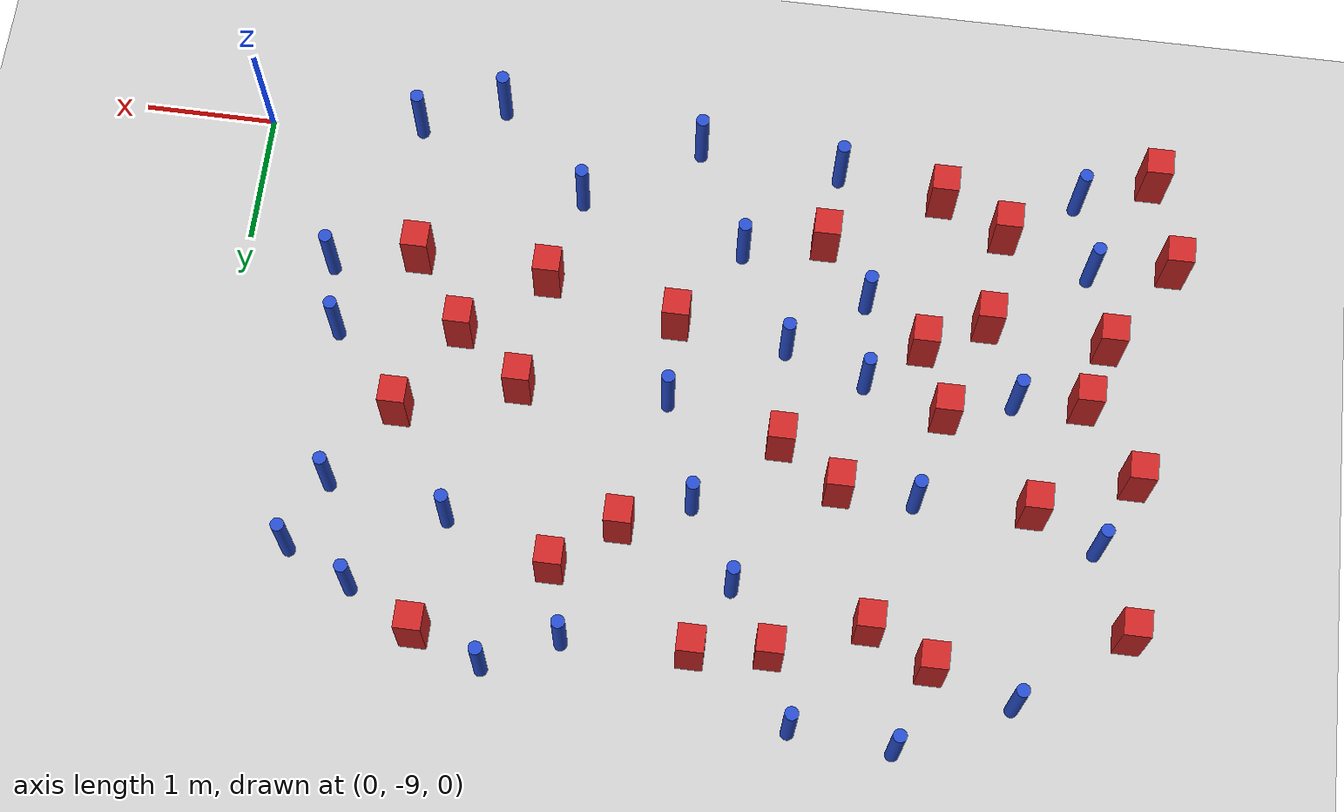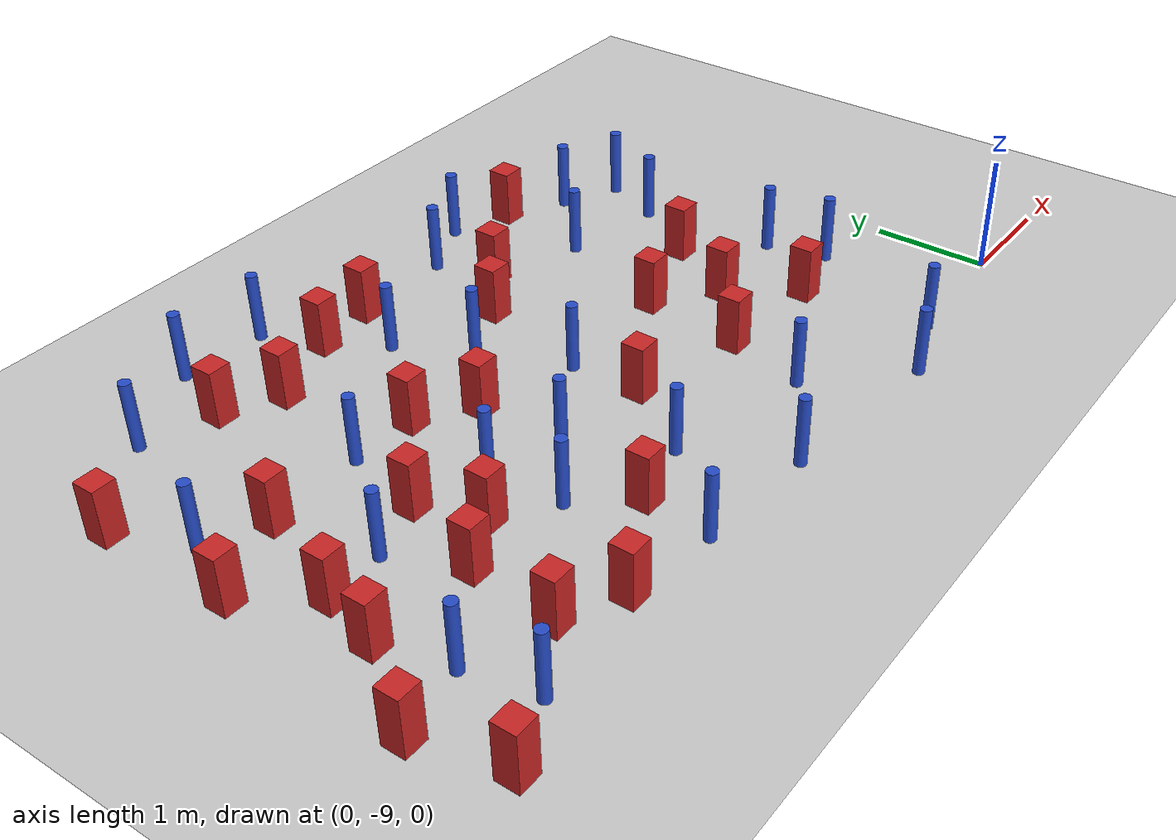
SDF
<sdf version="1.6">
 <world name="default">
  <model name="ground_plane">
   <static>1</static>
   <link name="link">
    <collision name="collision">
     <geometry><plane><normal>0 0 1</normal><size>100 100</size></plane></geometry>
     <surface><friction><ode><mu>100</mu><mu2>50</mu2></ode></friction></surface>
    </collision>
    <visual name="visual">
     <cast_shadows>0</cast_shadows>
     <geometry><plane><normal>0 0 1</normal><size>100 100</size></plane></geometry>
     <material>
      <ambient>1.0 1.0 1.0 1.0</ambient>
      <diffuse>0.8 0.8 0.8 1.0</diffuse>
      <specular>0.01 0.01 0.01 1.000000</specular>
     </material>
    </visual>
   </link>
  </model>
  <model name="pole_obstacle6">
   <static>true</static>
   <pose>-2.26504879221 -4.85748227697 7.38925637345e-09 -8.47170692798e-08 1.24976765033e-08 -1.74513093019e-07</pose>
   <link name="link">
    <pose>0 0 0.3 0 -0 0</pose>
    <inertial>
     <mass>1</mass>
     <inertia><ixx>0.145833</ixx><ixy>0</ixy><ixz>0</ixz><iyy>0.145833</iyy><iyz>0</iyz><izz>0.125</izz></inertia>
    </inertial>
    <collision name="collision">
     <geometry><cylinder><radius>0.05</radius><length>.6</length></cylinder></geometry>
    </collision>
    <visual name="visual">
     <geometry><cylinder><radius>0.05</radius><length>.6</length></cylinder></geometry>
     <material>
      <script><name>Gazebo/Blue</name><uri>file://media/materials/scripts/gazebo.material</uri></script>
     </material>
    </visual>
   </link>
  </model>
  <model name="square_post_obstacle4">
   <static>true</static>
   <pose>-4.2030178979 -6.79372922188 1.91545236811e-07 -7.35059704564e-06 1.12565212e-07 2.39332434364e-05</pose>
   <link name="link">
    <pose>0 0 0.25 0 -0 0</pose>
    <inertial>
     <mass>100</mass>
     <inertia>
      <ixx>0.166667</ixx>
      <ixy>0</ixy>
      <ixz>0</ixz>
      <iyy>0.166667</iyy>
      <iyz>0</iyz>
      <izz>0.166667</izz>
     </inertia>
    </inertial>
    <collision name="collision"><geometry><box><size>.2 .2 .5</size></box></geometry></collision>
    <visual name="visual">
     <geometry><box><size>.2 .2 .5</size></box></geometry>
     <material>
      <script><name>Gazebo/Red</name><uri>file://media/materials/scripts/gazebo.material</uri></script>
     </material>
    </visual>
   </link>
  </model>
  <model name="square_post_obstacle8">
   <static>true</static>
   <pose>-5.2184283776 -8.92105118813 1.91545236811e-07 -7.35059704564e-06 1.12565212e-07 2.39332434364e-05</pose>
   <link name="link">
    <pose>0 0 0.25 0 -0 0</pose>
    <inertial>
     <mass>100</mass>
     <inertia>
      <ixx>0.166667</ixx>
      <ixy>0</ixy>
      <ixz>0</ixz>
      <iyy>0.166667</iyy>
      <iyz>0</iyz>
      <izz>0.166667</izz>
     </inertia>
    </inertial>
    <collision name="collision"><geometry><box><size>.2 .2 .5</size></box></geometry></collision>
    <visual name="visual">
     <geometry><box><size>.2 .2 .5</size></box></geometry>
     <material>
      <script><name>Gazebo/Red</name><uri>file://media/materials/scripts/gazebo.material</uri></script>
     </material>
    </visual>
   </link>
  </model>
  <model name="pole_obstacle13">
   <static>true</static>
   <pose>-5.8833607309 -7.31371165673 7.38925637345e-09 -8.47170692796e-08 1.24976764786e-08 -1.74513093032e-07</pose>
   <link name="link">
    <pose>0 0 0.3 0 -0 0</pose>
    <inertial>
     <mass>1</mass>
     <inertia><ixx>0.145833</ixx><ixy>0</ixy><ixz>0</ixz><iyy>0.145833</iyy><iyz>0</iyz><izz>0.125</izz></inertia>
    </inertial>
    <collision name="collision">
     <geometry><cylinder><radius>0.05</radius><length>.6</length></cylinder></geometry>
    </collision>
    <visual name="visual">
     <geometry><cylinder><radius>0.05</radius><length>.6</length></cylinder></geometry>
     <material>
      <script><name>Gazebo/Blue</name><uri>file://media/materials/scripts/gazebo.material</uri></script>
     </material>
    </visual>
   </link>
  </model>
  <model name="square_post_obstacle12">
   <static>true</static>
   <pose>-5.38060062174 -7.15914760359 1.91545236811e-07 -7.35059704564e-06 1.12565212e-07 2.39332434364e-05</pose>
   <link name="link">
    <pose>0 0 0.25 0 -0 0</pose>
    <inertial>
     <mass>100</mass>
     <inertia>
      <ixx>0.166667</ixx>
      <ixy>0</ixy>
      <ixz>0</ixz>
      <iyy>0.166667</iyy>
      <iyz>0</iyz>
      <izz>0.166667</izz>
     </inertia>
    </inertial>
    <collision name="collision"><geometry><box><size>.2 .2 .5</size></box></geometry></collision>
    <visual name="visual">
     <geometry><box><size>.2 .2 .5</size></box></geometry>
     <material>
      <script><name>Gazebo/Red</name><uri>file://media/materials/scripts/gazebo.material</uri></script>
     </material>
    </visual>
   </link>
  </model>
  <model name="pole_obstacle27">
   <static>true</static>
   <pose>-2.80388599131 -5.11514710349 7.38925637345e-09 -8.47170692798e-08 1.24976765033e-08 -1.74513093019e-07</pose>
   <link name="link">
    <pose>0 0 0.3 0 -0 0</pose>
    <inertial>
     <mass>1</mass>
     <inertia><ixx>0.145833</ixx><ixy>0</ixy><ixz>0</ixz><iyy>0.145833</iyy><iyz>0</iyz><izz>0.125</izz></inertia>
    </inertial>
    <collision name="collision">
     <geometry><cylinder><radius>0.05</radius><length>.6</length></cylinder></geometry>
    </collision>
    <visual name="visual">
     <geometry><cylinder><radius>0.05</radius><length>.6</length></cylinder></geometry>
     <material>
      <script><name>Gazebo/Blue</name><uri>file://media/materials/scripts/gazebo.material</uri></script>
     </material>
    </visual>
   </link>
  </model>
  <model name="square_post_obstacle23">
   <static>true</static>
   <pose>-1.74018126087 -7.39712033459 1.91545236811e-07 -7.35059704564e-06 1.12565212e-07 2.39332434364e-05</pose>
   <link name="link">
    <pose>0 0 0.25 0 -0 0</pose>
    <inertial>
     <mass>100</mass>
     <inertia>
      <ixx>0.166667</ixx>
      <ixy>0</ixy>
      <ixz>0</ixz>
      <iyy>0.166667</iyy>
      <iyz>0</iyz>
      <izz>0.166667</izz>
     </inertia>
    </inertial>
    <collision name="collision"><geometry><box><size>.2 .2 .5</size></box></geometry></collision>
    <visual name="visual">
     <geometry><box><size>.2 .2 .5</size></box></geometry>
     <material>
      <script><name>Gazebo/Red</name><uri>file://media/materials/scripts/gazebo.material</uri></script>
     </material>
    </visual>
   </link>
  </model>
  <model name="pole_obstacle33">
   <static>true</static>
   <pose>-3.34837696422 -9.11828429959 7.38925637345e-09 -8.47170692793e-08 1.24976764408e-08 -1.74513093041e-07</pose>
   <link name="link">
    <pose>0 0 0.3 0 -0 0</pose>
    <inertial>
     <mass>1</mass>
     <inertia><ixx>0.145833</ixx><ixy>0</ixy><ixz>0</ixz><iyy>0.145833</iyy><iyz>0</iyz><izz>0.125</izz></inertia>
    </inertial>
    <collision name="collision">
     <geometry><cylinder><radius>0.05</radius><length>.6</length></cylinder></geometry>
    </collision>
    <visual name="visual">
     <geometry><cylinder><radius>0.05</radius><length>.6</length></cylinder></geometry>
     <material>
      <script><name>Gazebo/Blue</name><uri>file://media/materials/scripts/gazebo.material</uri></script>
     </material>
    </visual>
   </link>
  </model>
  <model name="square_post_obstacle30">
   <static>true</static>
   <pose>-1.36526067037 -6.71873833776 1.91545236811e-07 -7.35059704564e-06 1.12565212e-07 2.39332434364e-05</pose>
   <link name="link">
    <pose>0 0 0.25 0 -0 0</pose>
    <inertial>
     <mass>100</mass>
     <inertia>
      <ixx>0.166667</ixx>
      <ixy>0</ixy>
      <ixz>0</ixz>
      <iyy>0.166667</iyy>
      <iyz>0</iyz>
      <izz>0.166667</izz>
     </inertia>
    </inertial>
    <collision name="collision"><geometry><box><size>.2 .2 .5</size></box></geometry></collision>
    <visual name="visual">
     <geometry><box><size>.2 .2 .5</size></box></geometry>
     <material>
      <script><name>Gazebo/Red</name><uri>file://media/materials/scripts/gazebo.material</uri></script>
     </material>
    </visual>
   </link>
  </model>
  <model name="square_post_obstacle31">
   <static>true</static>
   <pose>-6.54015330846 -7.85762567127 1.91545236811e-07 -7.35059704564e-06 1.12565212e-07 2.39332434364e-05</pose>
   <link name="link">
    <pose>0 0 0.25 0 -0 0</pose>
    <inertial>
     <mass>100</mass>
     <inertia>
      <ixx>0.166667</ixx>
      <ixy>0</ixy>
      <ixz>0</ixz>
      <iyy>0.166667</iyy>
      <iyz>0</iyz>
      <izz>0.166667</izz>
     </inertia>
    </inertial>
    <collision name="collision"><geometry><box><size>.2 .2 .5</size></box></geometry></collision>
    <visual name="visual">
     <geometry><box><size>.2 .2 .5</size></box></geometry>
     <material>
      <script><name>Gazebo/Red</name><uri>file://media/materials/scripts/gazebo.material</uri></script>
     </material>
    </visual>
   </link>
  </model>
  <model name="pole_obstacle47">
   <static>true</static>
   <pose>-3.34162729168 -7.02548422057 7.38925637345e-09 -8.47170692794e-08 1.24976764468e-08 -1.7451309304e-07</pose>
   <link name="link">
    <pose>0 0 0.3 0 -0 0</pose>
    <inertial>
     <mass>1</mass>
     <inertia><ixx>0.145833</ixx><ixy>0</ixy><ixz>0</ixz><iyy>0.145833</iyy><iyz>0</iyz><izz>0.125</izz></inertia>
    </inertial>
    <collision name="collision">
     <geometry><cylinder><radius>0.05</radius><length>.6</length></cylinder></geometry>
    </collision>
    <visual name="visual">
     <geometry><cylinder><radius>0.05</radius><length>.6</length></cylinder></geometry>
     <material>
      <script><name>Gazebo/Blue</name><uri>file://media/materials/scripts/gazebo.material</uri></script>
     </material>
    </visual>
   </link>
  </model>
  <model name="pole_obstacle55">
   <static>true</static>
   <pose>-6.5473856778 -6.2532618082 7.38925637345e-09 -8.47170692796e-08 1.24976764786e-08 -1.74513093032e-07</pose>
   <link name="link">
    <pose>0 0 0.3 0 -0 0</pose>
    <inertial>
     <mass>1</mass>
     <inertia><ixx>0.145833</ixx><ixy>0</ixy><ixz>0</ixz><iyy>0.145833</iyy><iyz>0</iyz><izz>0.125</izz></inertia>
    </inertial>
    <collision name="collision">
     <geometry><cylinder><radius>0.05</radius><length>.6</length></cylinder></geometry>
    </collision>
    <visual name="visual">
     <geometry><cylinder><radius>0.05</radius><length>.6</length></cylinder></geometry>
     <material>
      <script><name>Gazebo/Blue</name><uri>file://media/materials/scripts/gazebo.material</uri></script>
     </material>
    </visual>
   </link>
  </model>
  <model name="square_post_obstacle45">
   <static>true</static>
   <pose>-5.63883489366 -7.92585253347 1.91545236811e-07 -7.35059704564e-06 1.12565212e-07 2.39332434364e-05</pose>
   <link name="link">
    <pose>0 0 0.25 0 -0 0</pose>
    <inertial>
     <mass>100</mass>
     <inertia>
      <ixx>0.166667</ixx>
      <ixy>0</ixy>
      <ixz>0</ixz>
      <iyy>0.166667</iyy>
      <iyz>0</iyz>
      <izz>0.166667</izz>
     </inertia>
    </inertial>
    <collision name="collision"><geometry><box><size>.2 .2 .5</size></box></geometry></collision>
    <visual name="visual">
     <geometry><box><size>.2 .2 .5</size></box></geometry>
     <material>
      <script><name>Gazebo/Red</name><uri>file://media/materials/scripts/gazebo.material</uri></script>
     </material>
    </visual>
   </link>
  </model>
  <model name="pole_obstacle65">
   <static>true</static>
   <pose>-1.85678102701 -5.92381229726 7.38925637345e-09 -8.47170692799e-08 1.24976765033e-08 -1.74513093018e-07</pose>
   <link name="link">
    <pose>0 0 0.3 0 -0 0</pose>
    <inertial>
     <mass>1</mass>
     <inertia><ixx>0.145833</ixx><ixy>0</ixy><ixz>0</ixz><iyy>0.145833</iyy><iyz>0</iyz><izz>0.125</izz></inertia>
    </inertial>
    <collision name="collision">
     <geometry><cylinder><radius>0.05</radius><length>.6</length></cylinder></geometry>
    </collision>
    <visual name="visual">
     <geometry><cylinder><radius>0.05</radius><length>.6</length></cylinder></geometry>
     <material>
      <script><name>Gazebo/Blue</name><uri>file://media/materials/scripts/gazebo.material</uri></script>
     </material>
    </visual>
   </link>
  </model>
  <model name="square_post_obstacle58">
   <static>true</static>
   <pose>-3.10819975925 -6.01784533342 1.91545236811e-07 -7.35059704564e-06 1.12565212e-07 2.39332434364e-05</pose>
   <link name="link">
    <pose>0 0 0.25 0 -0 0</pose>
    <inertial>
     <mass>100</mass>
     <inertia>
      <ixx>0.166667</ixx>
      <ixy>0</ixy>
      <ixz>0</ixz>
      <iyy>0.166667</iyy>
      <iyz>0</iyz>
      <izz>0.166667</izz>
     </inertia>
    </inertial>
    <collision name="collision"><geometry><box><size>.2 .2 .5</size></box></geometry></collision>
    <visual name="visual">
     <geometry><box><size>.2 .2 .5</size></box></geometry>
     <material>
      <script><name>Gazebo/Red</name><uri>file://media/materials/scripts/gazebo.material</uri></script>
     </material>
    </visual>
   </link>
  </model>
  <model name="square_post_obstacle59">
   <static>true</static>
   <pose>-4.65471401799 -6.48807343669 1.91545236811e-07 -7.35059704564e-06 1.12565212e-07 2.39332434364e-05</pose>
   <link name="link">
    <pose>0 0 0.25 0 -0 0</pose>
    <inertial>
     <mass>100</mass>
     <inertia>
      <ixx>0.166667</ixx>
      <ixy>0</ixy>
      <ixz>0</ixz>
      <iyy>0.166667</iyy>
      <iyz>0</iyz>
      <izz>0.166667</izz>
     </inertia>
    </inertial>
    <collision name="collision"><geometry><box><size>.2 .2 .5</size></box></geometry></collision>
    <visual name="visual">
     <geometry><box><size>.2 .2 .5</size></box></geometry>
     <material>
      <script><name>Gazebo/Red</name><uri>file://media/materials/scripts/gazebo.material</uri></script>
     </material>
    </visual>
   </link>
  </model>
  <model name="pole_obstacle76">
   <static>true</static>
   <pose>-4.7268592495 -7.99118646013 7.38925637345e-09 -8.47170692796e-08 1.24976764752e-08 -1.74513093035e-07</pose>
   <link name="link">
    <pose>0 0 0.3 0 -0 0</pose>
    <inertial>
     <mass>1</mass>
     <inertia><ixx>0.145833</ixx><ixy>0</ixy><ixz>0</ixz><iyy>0.145833</iyy><iyz>0</iyz><izz>0.125</izz></inertia>
    </inertial>
    <collision name="collision">
     <geometry><cylinder><radius>0.05</radius><length>.6</length></cylinder></geometry>
    </collision>
    <visual name="visual">
     <geometry><cylinder><radius>0.05</radius><length>.6</length></cylinder></geometry>
     <material>
      <script><name>Gazebo/Blue</name><uri>file://media/materials/scripts/gazebo.material</uri></script>
     </material>
    </visual>
   </link>
  </model>
  <model name="pole_obstacle77">
   <static>true</static>
   <pose>-3.76123538723 -8.29479877128 7.38925637345e-09 -8.47170692799e-08 1.24976765012e-08 -1.74513093021e-07</pose>
   <link name="link">
    <pose>0 0 0.3 0 -0 0</pose>
    <inertial>
     <mass>1</mass>
     <inertia><ixx>0.145833</ixx><ixy>0</ixy><ixz>0</ixz><iyy>0.145833</iyy><iyz>0</iyz><izz>0.125</izz></inertia>
    </inertial>
    <collision name="collision">
     <geometry><cylinder><radius>0.05</radius><length>.6</length></cylinder></geometry>
    </collision>
    <visual name="visual">
     <geometry><cylinder><radius>0.05</radius><length>.6</length></cylinder></geometry>
     <material>
      <script><name>Gazebo/Blue</name><uri>file://media/materials/scripts/gazebo.material</uri></script>
     </material>
    </visual>
   </link>
  </model>
  <model name="pole_obstacle78">
   <static>true</static>
   <pose>-3.61400960462 -6.24065457291 7.38925637345e-09 -8.47170692794e-08 1.24976764468e-08 -1.7451309304e-07</pose>
   <link name="link">
    <pose>0 0 0.3 0 -0 0</pose>
    <inertial>
     <mass>1</mass>
     <inertia><ixx>0.145833</ixx><ixy>0</ixy><ixz>0</ixz><iyy>0.145833</iyy><iyz>0</iyz><izz>0.125</izz></inertia>
    </inertial>
    <collision name="collision">
     <geometry><cylinder><radius>0.05</radius><length>.6</length></cylinder></geometry>
    </collision>
    <visual name="visual">
     <geometry><cylinder><radius>0.05</radius><length>.6</length></cylinder></geometry>
     <material>
      <script><name>Gazebo/Blue</name><uri>file://media/materials/scripts/gazebo.material</uri></script>
     </material>
    </visual>
   </link>
  </model>
  <model name="pole_obstacle83">
   <static>true</static>
   <pose>-4.42569632141 -9.03046354257 7.38925637345e-09 -8.471706928e-08 1.24976765081e-08 -1.74513093015e-07</pose>
   <link name="link">
    <pose>0 0 0.3 0 -0 0</pose>
    <inertial>
     <mass>1</mass>
     <inertia><ixx>0.145833</ixx><ixy>0</ixy><ixz>0</ixz><iyy>0.145833</iyy><iyz>0</iyz><izz>0.125</izz></inertia>
    </inertial>
    <collision name="collision">
     <geometry><cylinder><radius>0.05</radius><length>.6</length></cylinder></geometry>
    </collision>
    <visual name="visual">
     <geometry><cylinder><radius>0.05</radius><length>.6</length></cylinder></geometry>
     <material>
      <script><name>Gazebo/Blue</name><uri>file://media/materials/scripts/gazebo.material</uri></script>
     </material>
    </visual>
   </link>
  </model>
  <model name="square_post_obstacle76">
   <static>true</static>
   <pose>-2.23571767284 -7.00314785538 1.91545236811e-07 -7.35059704564e-06 1.12565212e-07 2.39332434364e-05</pose>
   <link name="link">
    <pose>0 0 0.25 0 -0 0</pose>
    <inertial>
     <mass>100</mass>
     <inertia>
      <ixx>0.166667</ixx>
      <ixy>0</ixy>
      <ixz>0</ixz>
      <iyy>0.166667</iyy>
      <iyz>0</iyz>
      <izz>0.166667</izz>
     </inertia>
    </inertial>
    <collision name="collision"><geometry><box><size>.2 .2 .5</size></box></geometry></collision>
    <visual name="visual">
     <geometry><box><size>.2 .2 .5</size></box></geometry>
     <material>
      <script><name>Gazebo/Red</name><uri>file://media/materials/scripts/gazebo.material</uri></script>
     </material>
    </visual>
   </link>
  </model>
  <model name="pole_obstacle90">
   <static>true</static>
   <pose>-0.749116647324 -5.56674345181 7.38925637345e-09 -8.471706928e-08 1.24976765086e-08 -1.74513093015e-07</pose>
   <link name="link">
    <pose>0 0 0.3 0 -0 0</pose>
    <inertial>
     <mass>1</mass>
     <inertia><ixx>0.145833</ixx><ixy>0</ixy><ixz>0</ixz><iyy>0.145833</iyy><iyz>0</iyz><izz>0.125</izz></inertia>
    </inertial>
    <collision name="collision">
     <geometry><cylinder><radius>0.05</radius><length>.6</length></cylinder></geometry>
    </collision>
    <visual name="visual">
     <geometry><cylinder><radius>0.05</radius><length>.6</length></cylinder></geometry>
     <material>
      <script><name>Gazebo/Blue</name><uri>file://media/materials/scripts/gazebo.material</uri></script>
     </material>
    </visual>
   </link>
  </model>
  <model name="square_post_obstacle91">
   <static>true</static>
   <pose>-4.96407467702 -5.47694185136 1.91545236811e-07 -7.35059704564e-06 1.12565212e-07 2.39332434364e-05</pose>
   <link name="link">
    <pose>0 0 0.25 0 -0 0</pose>
    <inertial>
     <mass>100</mass>
     <inertia>
      <ixx>0.166667</ixx>
      <ixy>0</ixy>
      <ixz>0</ixz>
      <iyy>0.166667</iyy>
      <iyz>0</iyz>
      <izz>0.166667</izz>
     </inertia>
    </inertial>
    <collision name="collision"><geometry><box><size>.2 .2 .5</size></box></geometry></collision>
    <visual name="visual">
     <geometry><box><size>.2 .2 .5</size></box></geometry>
     <material>
      <script><name>Gazebo/Red</name><uri>file://media/materials/scripts/gazebo.material</uri></script>
     </material>
    </visual>
   </link>
  </model>
  <model name="square_post_obstacle99">
   <static>true</static>
   <pose>-6.79808715885 -6.80720416497 1.91545236811e-07 -7.35059704564e-06 1.12565212e-07 2.39332434364e-05</pose>
   <link name="link">
    <pose>0 0 0.25 0 -0 0</pose>
    <inertial>
     <mass>100</mass>
     <inertia>
      <ixx>0.166667</ixx>
      <ixy>0</ixy>
      <ixz>0</ixz>
      <iyy>0.166667</iyy>
      <iyz>0</iyz>
      <izz>0.166667</izz>
     </inertia>
    </inertial>
    <collision name="collision"><geometry><box><size>.2 .2 .5</size></box></geometry></collision>
    <visual name="visual">
     <geometry><box><size>.2 .2 .5</size></box></geometry>
     <material>
      <script><name>Gazebo/Red</name><uri>file://media/materials/scripts/gazebo.material</uri></script>
     </material>
    </visual>
   </link>
  </model>
  <model name="pole_obstacle113">
   <static>true</static>
   <pose>-3.96846138044 -5.65490490385 7.38925637345e-09 -8.471706928e-08 1.24976765147e-08 -1.74513093014e-07</pose>
   <link name="link">
    <pose>0 0 0.3 0 -0 0</pose>
    <inertial>
     <mass>1</mass>
     <inertia><ixx>0.145833</ixx><ixy>0</ixy><ixz>0</ixz><iyy>0.145833</iyy><iyz>0</iyz><izz>0.125</izz></inertia>
    </inertial>
    <collision name="collision">
     <geometry><cylinder><radius>0.05</radius><length>.6</length></cylinder></geometry>
    </collision>
    <visual name="visual">
     <geometry><cylinder><radius>0.05</radius><length>.6</length></cylinder></geometry>
     <material>
      <script><name>Gazebo/Blue</name><uri>file://media/materials/scripts/gazebo.material</uri></script>
     </material>
    </visual>
   </link>
  </model>
  <model name="square_post_obstacle120">
   <static>true</static>
   <pose>-5.17726432455 -7.67786126438 1.91545236811e-07 -7.35059704564e-06 1.12565212e-07 2.39332434364e-05</pose>
   <link name="link">
    <pose>0 0 0.25 0 -0 0</pose>
    <inertial>
     <mass>100</mass>
     <inertia>
      <ixx>0.166667</ixx>
      <ixy>0</ixy>
      <ixz>0</ixz>
      <iyy>0.166667</iyy>
      <iyz>0</iyz>
      <izz>0.166667</izz>
     </inertia>
    </inertial>
    <collision name="collision"><geometry><box><size>.2 .2 .5</size></box></geometry></collision>
    <visual name="visual">
     <geometry><box><size>.2 .2 .5</size></box></geometry>
     <material>
      <script><name>Gazebo/Red</name><uri>file://media/materials/scripts/gazebo.material</uri></script>
     </material>
    </visual>
   </link>
  </model>
  <model name="pole_obstacle124">
   <static>true</static>
   <pose>-4.47588805026 -4.67273683618 7.38925637345e-09 -8.47170692796e-08 1.24976764786e-08 -1.74513093032e-07</pose>
   <link name="link">
    <pose>0 0 0.3 0 -0 0</pose>
    <inertial>
     <mass>1</mass>
     <inertia><ixx>0.145833</ixx><ixy>0</ixy><ixz>0</ixz><iyy>0.145833</iyy><iyz>0</iyz><izz>0.125</izz></inertia>
    </inertial>
    <collision name="collision">
     <geometry><cylinder><radius>0.05</radius><length>.6</length></cylinder></geometry>
    </collision>
    <visual name="visual">
     <geometry><cylinder><radius>0.05</radius><length>.6</length></cylinder></geometry>
     <material>
      <script><name>Gazebo/Blue</name><uri>file://media/materials/scripts/gazebo.material</uri></script>
     </material>
    </visual>
   </link>
  </model>
  <model name="square_post_obstacle125">
   <static>true</static>
   <pose>-6.0695849278 -6.49443843851 1.91545236811e-07 -7.35059704564e-06 1.12565212e-07 2.39332434364e-05</pose>
   <link name="link">
    <pose>0 0 0.25 0 -0 0</pose>
    <inertial>
     <mass>100</mass>
     <inertia>
      <ixx>0.166667</ixx>
      <ixy>0</ixy>
      <ixz>0</ixz>
      <iyy>0.166667</iyy>
      <iyz>0</iyz>
      <izz>0.166667</izz>
     </inertia>
    </inertial>
    <collision name="collision"><geometry><box><size>.2 .2 .5</size></box></geometry></collision>
    <visual name="visual">
     <geometry><box><size>.2 .2 .5</size></box></geometry>
     <material>
      <script><name>Gazebo/Red</name><uri>file://media/materials/scripts/gazebo.material</uri></script>
     </material>
    </visual>
   </link>
  </model>
  <model name="square_post_obstacle127">
   <static>true</static>
   <pose>-3.73086378689 -5.14314940927 1.91545236811e-07 -7.35059704564e-06 1.12565212e-07 2.39332434364e-05</pose>
   <link name="link">
    <pose>0 0 0.25 0 -0 0</pose>
    <inertial>
     <mass>100</mass>
     <inertia>
      <ixx>0.166667</ixx>
      <ixy>0</ixy>
      <ixz>0</ixz>
      <iyy>0.166667</iyy>
      <iyz>0</iyz>
      <izz>0.166667</izz>
     </inertia>
    </inertial>
    <collision name="collision"><geometry><box><size>.2 .2 .5</size></box></geometry></collision>
    <visual name="visual">
     <geometry><box><size>.2 .2 .5</size></box></geometry>
     <material>
      <script><name>Gazebo/Red</name><uri>file://media/materials/scripts/gazebo.material</uri></script>
     </material>
    </visual>
   </link>
  </model>
  <model name="pole_obstacle137">
   <static>true</static>
   <pose>-6.03193816883 -5.03041519994 7.38925637345e-09 -8.47170692796e-08 1.24976764786e-08 -1.74513093032e-07</pose>
   <link name="link">
    <pose>0 0 0.3 0 -0 0</pose>
    <inertial>
     <mass>1</mass>
     <inertia><ixx>0.145833</ixx><ixy>0</ixy><ixz>0</ixz><iyy>0.145833</iyy><iyz>0</iyz><izz>0.125</izz></inertia>
    </inertial>
    <collision name="collision">
     <geometry><cylinder><radius>0.05</radius><length>.6</length></cylinder></geometry>
    </collision>
    <visual name="visual">
     <geometry><cylinder><radius>0.05</radius><length>.6</length></cylinder></geometry>
     <material>
      <script><name>Gazebo/Blue</name><uri>file://media/materials/scripts/gazebo.material</uri></script>
     </material>
    </visual>
   </link>
  </model>
  <model name="pole_obstacle139">
   <static>true</static>
   <pose>-0.957752488155 -6.09408435012 7.38925637345e-09 -8.47170692799e-08 1.2497676509e-08 -1.74513093015e-07</pose>
   <link name="link">
    <pose>0 0 0.3 0 -0 0</pose>
    <inertial>
     <mass>1</mass>
     <inertia><ixx>0.145833</ixx><ixy>0</ixy><ixz>0</ixz><iyy>0.145833</iyy><iyz>0</iyz><izz>0.125</izz></inertia>
    </inertial>
    <collision name="collision">
     <geometry><cylinder><radius>0.05</radius><length>.6</length></cylinder></geometry>
    </collision>
    <visual name="visual">
     <geometry><cylinder><radius>0.05</radius><length>.6</length></cylinder></geometry>
     <material>
      <script><name>Gazebo/Blue</name><uri>file://media/materials/scripts/gazebo.material</uri></script>
     </material>
    </visual>
   </link>
  </model>
  <model name="square_post_obstacle141">
   <static>true</static>
   <pose>-6.80549178289 -9.25705124161 1.91545236811e-07 -7.35059704564e-06 1.12565212e-07 2.39332434364e-05</pose>
   <link name="link">
    <pose>0 0 0.25 0 -0 0</pose>
    <inertial>
     <mass>100</mass>
     <inertia>
      <ixx>0.166667</ixx>
      <ixy>0</ixy>
      <ixz>0</ixz>
      <iyy>0.166667</iyy>
      <iyz>0</iyz>
      <izz>0.166667</izz>
     </inertia>
    </inertial>
    <collision name="collision"><geometry><box><size>.2 .2 .5</size></box></geometry></collision>
    <visual name="visual">
     <geometry><box><size>.2 .2 .5</size></box></geometry>
     <material>
      <script><name>Gazebo/Red</name><uri>file://media/materials/scripts/gazebo.material</uri></script>
     </material>
    </visual>
   </link>
  </model>
  <model name="pole_obstacle152">
   <static>true</static>
   <pose>-4.16836898966 -7.54497027131 7.38925637345e-09 -8.47170692796e-08 1.24976764786e-08 -1.74513093032e-07</pose>
   <link name="link">
    <pose>0 0 0.3 0 -0 0</pose>
    <inertial>
     <mass>1</mass>
     <inertia><ixx>0.145833</ixx><ixy>0</ixy><ixz>0</ixz><iyy>0.145833</iyy><iyz>0</iyz><izz>0.125</izz></inertia>
    </inertial>
    <collision name="collision">
     <geometry><cylinder><radius>0.05</radius><length>.6</length></cylinder></geometry>
    </collision>
    <visual name="visual">
     <geometry><cylinder><radius>0.05</radius><length>.6</length></cylinder></geometry>
     <material>
      <script><name>Gazebo/Blue</name><uri>file://media/materials/scripts/gazebo.material</uri></script>
     </material>
    </visual>
   </link>
  </model>
  <model name="pole_obstacle153">
   <static>true</static>
   <pose>-5.22167665369 -4.61191120835 7.38925637345e-09 -8.47170692796e-08 1.24976764786e-08 -1.74513093032e-07</pose>
   <link name="link">
    <pose>0 0 0.3 0 -0 0</pose>
    <inertial>
     <mass>1</mass>
     <inertia><ixx>0.145833</ixx><ixy>0</ixy><ixz>0</ixz><iyy>0.145833</iyy><iyz>0</iyz><izz>0.125</izz></inertia>
    </inertial>
    <collision name="collision">
     <geometry><cylinder><radius>0.05</radius><length>.6</length></cylinder></geometry>
    </collision>
    <visual name="visual">
     <geometry><cylinder><radius>0.05</radius><length>.6</length></cylinder></geometry>
     <material>
      <script><name>Gazebo/Blue</name><uri>file://media/materials/scripts/gazebo.material</uri></script>
     </material>
    </visual>
   </link>
  </model>
  <model name="square_post_obstacle152">
   <static>true</static>
   <pose>-5.4281575622 -5.23785567551 1.91545236811e-07 -7.35059704564e-06 1.12565212e-07 2.39332434364e-05</pose>
   <link name="link">
    <pose>0 0 0.25 0 -0 0</pose>
    <inertial>
     <mass>100</mass>
     <inertia>
      <ixx>0.166667</ixx>
      <ixy>0</ixy>
      <ixz>0</ixz>
      <iyy>0.166667</iyy>
      <iyz>0</iyz>
      <izz>0.166667</izz>
     </inertia>
    </inertial>
    <collision name="collision"><geometry><box><size>.2 .2 .5</size></box></geometry></collision>
    <visual name="visual">
     <geometry><box><size>.2 .2 .5</size></box></geometry>
     <material>
      <script><name>Gazebo/Red</name><uri>file://media/materials/scripts/gazebo.material</uri></script>
     </material>
    </visual>
   </link>
  </model>
  <model name="pole_obstacle157">
   <static>true</static>
   <pose>-0.819364947609 -7.29284414255 7.38925637345e-09 -8.471706928e-08 1.24976765086e-08 -1.74513093015e-07</pose>
   <link name="link">
    <pose>0 0 0.3 0 -0 0</pose>
    <inertial>
     <mass>1</mass>
     <inertia><ixx>0.145833</ixx><ixy>0</ixy><ixz>0</ixz><iyy>0.145833</iyy><iyz>0</iyz><izz>0.125</izz></inertia>
    </inertial>
    <collision name="collision">
     <geometry><cylinder><radius>0.05</radius><length>.6</length></cylinder></geometry>
    </collision>
    <visual name="visual">
     <geometry><cylinder><radius>0.05</radius><length>.6</length></cylinder></geometry>
     <material>
      <script><name>Gazebo/Blue</name><uri>file://media/materials/scripts/gazebo.material</uri></script>
     </material>
    </visual>
   </link>
  </model>
  <model name="pole_obstacle160">
   <static>true</static>
   <pose>-6.24381537868 -9.01584127932 7.38925637345e-09 -8.471706928e-08 1.24976765081e-08 -1.74513093015e-07</pose>
   <link name="link">
    <pose>0 0 0.3 0 -0 0</pose>
    <inertial>
     <mass>1</mass>
     <inertia><ixx>0.145833</ixx><ixy>0</ixy><ixz>0</ixz><iyy>0.145833</iyy><iyz>0</iyz><izz>0.125</izz></inertia>
    </inertial>
    <collision name="collision">
     <geometry><cylinder><radius>0.05</radius><length>.6</length></cylinder></geometry>
    </collision>
    <visual name="visual">
     <geometry><cylinder><radius>0.05</radius><length>.6</length></cylinder></geometry>
     <material>
      <script><name>Gazebo/Blue</name><uri>file://media/materials/scripts/gazebo.material</uri></script>
     </material>
    </visual>
   </link>
  </model>
  <model name="pole_obstacle162">
   <static>true</static>
   <pose>-1.1760205253 -9.05526936874 7.38925637345e-09 -8.47170692798e-08 1.24976764881e-08 -1.74513093027e-07</pose>
   <link name="link">
    <pose>0 0 0.3 0 -0 0</pose>
    <inertial>
     <mass>1</mass>
     <inertia><ixx>0.145833</ixx><ixy>0</ixy><ixz>0</ixz><iyy>0.145833</iyy><iyz>0</iyz><izz>0.125</izz></inertia>
    </inertial>
    <collision name="collision">
     <geometry><cylinder><radius>0.05</radius><length>.6</length></cylinder></geometry>
    </collision>
    <visual name="visual">
     <geometry><cylinder><radius>0.05</radius><length>.6</length></cylinder></geometry>
     <material>
      <script><name>Gazebo/Blue</name><uri>file://media/materials/scripts/gazebo.material</uri></script>
     </material>
    </visual>
   </link>
  </model>
  <model name="square_post_obstacle154">
   <static>true</static>
   <pose>-6.80958487303 -5.64135228596 1.91545236811e-07 -7.35059704564e-06 1.12565212e-07 2.39332434364e-05</pose>
   <link name="link">
    <pose>0 0 0.25 0 -0 0</pose>
    <inertial>
     <mass>100</mass>
     <inertia>
      <ixx>0.166667</ixx>
      <ixy>0</ixy>
      <ixz>0</ixz>
      <iyy>0.166667</iyy>
      <iyz>0</iyz>
      <izz>0.166667</izz>
     </inertia>
    </inertial>
    <collision name="collision"><geometry><box><size>.2 .2 .5</size></box></geometry></collision>
    <visual name="visual">
     <geometry><box><size>.2 .2 .5</size></box></geometry>
     <material>
      <script><name>Gazebo/Red</name><uri>file://media/materials/scripts/gazebo.material</uri></script>
     </material>
    </visual>
   </link>
  </model>
  <model name="square_post_obstacle156">
   <static>true</static>
   <pose>-2.33168202044 -7.89005367524 1.91545236811e-07 -7.35059704564e-06 1.12565212e-07 2.39332434364e-05</pose>
   <link name="link">
    <pose>0 0 0.25 0 -0 0</pose>
    <inertial>
     <mass>100</mass>
     <inertia>
      <ixx>0.166667</ixx>
      <ixy>0</ixy>
      <ixz>0</ixz>
      <iyy>0.166667</iyy>
      <iyz>0</iyz>
      <izz>0.166667</izz>
     </inertia>
    </inertial>
    <collision name="collision"><geometry><box><size>.2 .2 .5</size></box></geometry></collision>
    <visual name="visual">
     <geometry><box><size>.2 .2 .5</size></box></geometry>
     <material>
      <script><name>Gazebo/Red</name><uri>file://media/materials/scripts/gazebo.material</uri></script>
     </material>
    </visual>
   </link>
  </model>
  <model name="square_post_obstacle167">
   <static>true</static>
   <pose>-2.66003846618 -5.65299188991 1.91545236811e-07 -7.35059704564e-06 1.12565212e-07 2.39332434364e-05</pose>
   <link name="link">
    <pose>0 0 0.25 0 -0 0</pose>
    <inertial>
     <mass>100</mass>
     <inertia>
      <ixx>0.166667</ixx>
      <ixy>0</ixy>
      <ixz>0</ixz>
      <iyy>0.166667</iyy>
      <iyz>0</iyz>
      <izz>0.166667</izz>
     </inertia>
    </inertial>
    <collision name="collision"><geometry><box><size>.2 .2 .5</size></box></geometry></collision>
    <visual name="visual">
     <geometry><box><size>.2 .2 .5</size></box></geometry>
     <material>
      <script><name>Gazebo/Red</name><uri>file://media/materials/scripts/gazebo.material</uri></script>
     </material>
    </visual>
   </link>
  </model>
  <model name="pole_obstacle169">
   <static>true</static>
   <pose>-1.79705436302 -9.29358658159 7.38925637345e-09 -8.47170692798e-08 1.24976764881e-08 -1.74513093027e-07</pose>
   <link name="link">
    <pose>0 0 0.3 0 -0 0</pose>
    <inertial>
     <mass>1</mass>
     <inertia><ixx>0.145833</ixx><ixy>0</ixy><ixz>0</ixz><iyy>0.145833</iyy><iyz>0</iyz><izz>0.125</izz></inertia>
    </inertial>
    <collision name="collision">
     <geometry><cylinder><radius>0.05</radius><length>.6</length></cylinder></geometry>
    </collision>
    <visual name="visual">
     <geometry><cylinder><radius>0.05</radius><length>.6</length></cylinder></geometry>
     <material>
      <script><name>Gazebo/Blue</name><uri>file://media/materials/scripts/gazebo.material</uri></script>
     </material>
    </visual>
   </link>
  </model>
  <model name="square_post_obstacle169">
   <static>true</static>
   <pose>-6.39602222734 -7.35898689012 1.91545236811e-07 -7.35059704564e-06 1.12565212e-07 2.39332434364e-05</pose>
   <link name="link">
    <pose>0 0 0.25 0 -0 0</pose>
    <inertial>
     <mass>100</mass>
     <inertia>
      <ixx>0.166667</ixx>
      <ixy>0</ixy>
      <ixz>0</ixz>
      <iyy>0.166667</iyy>
      <iyz>0</iyz>
      <izz>0.166667</izz>
     </inertia>
    </inertial>
    <collision name="collision"><geometry><box><size>.2 .2 .5</size></box></geometry></collision>
    <visual name="visual">
     <geometry><box><size>.2 .2 .5</size></box></geometry>
     <material>
      <script><name>Gazebo/Red</name><uri>file://media/materials/scripts/gazebo.material</uri></script>
     </material>
    </visual>
   </link>
  </model>
  <model name="square_post_obstacle174">
   <static>true</static>
   <pose>-1.33147475306 -7.96430228385 1.91545236811e-07 -7.35059704564e-06 1.12565212e-07 2.39332434364e-05</pose>
   <link name="link">
    <pose>0 0 0.25 0 -0 0</pose>
    <inertial>
     <mass>100</mass>
     <inertia>
      <ixx>0.166667</ixx>
      <ixy>0</ixy>
      <ixz>0</ixz>
      <iyy>0.166667</iyy>
      <iyz>0</iyz>
      <izz>0.166667</izz>
     </inertia>
    </inertial>
    <collision name="collision"><geometry><box><size>.2 .2 .5</size></box></geometry></collision>
    <visual name="visual">
     <geometry><box><size>.2 .2 .5</size></box></geometry>
     <material>
      <script><name>Gazebo/Red</name><uri>file://media/materials/scripts/gazebo.material</uri></script>
     </material>
    </visual>
   </link>
  </model>
  <model name="square_post_obstacle177">
   <static>true</static>
   <pose>-6.99202638968 -8.54848779563 1.91545236811e-07 -7.35059704564e-06 1.12565212e-07 2.39332434364e-05</pose>
   <link name="link">
    <pose>0 0 0.25 0 -0 0</pose>
    <inertial>
     <mass>100</mass>
     <inertia>
      <ixx>0.166667</ixx>
      <ixy>0</ixy>
      <ixz>0</ixz>
      <iyy>0.166667</iyy>
      <iyz>0</iyz>
      <izz>0.166667</izz>
     </inertia>
    </inertial>
    <collision name="collision"><geometry><box><size>.2 .2 .5</size></box></geometry></collision>
    <visual name="visual">
     <geometry><box><size>.2 .2 .5</size></box></geometry>
     <material>
      <script><name>Gazebo/Red</name><uri>file://media/materials/scripts/gazebo.material</uri></script>
     </material>
    </visual>
   </link>
  </model>
  <model name="pole_obstacle181">
   <static>true</static>
   <pose>-2.49922861626 -8.58655927062 7.38925637345e-09 -8.47170692793e-08 1.24976764408e-08 -1.74513093041e-07</pose>
   <link name="link">
    <pose>0 0 0.3 0 -0 0</pose>
    <inertial>
     <mass>1</mass>
     <inertia><ixx>0.145833</ixx><ixy>0</ixy><ixz>0</ixz><iyy>0.145833</iyy><iyz>0</iyz><izz>0.125</izz></inertia>
    </inertial>
    <collision name="collision">
     <geometry><cylinder><radius>0.05</radius><length>.6</length></cylinder></geometry>
    </collision>
    <visual name="visual">
     <geometry><cylinder><radius>0.05</radius><length>.6</length></cylinder></geometry>
     <material>
      <script><name>Gazebo/Blue</name><uri>file://media/materials/scripts/gazebo.material</uri></script>
     </material>
    </visual>
   </link>
  </model>
  <model name="square_post_obstacle189">
   <static>true</static>
   <pose>-3.32719011093 -7.65945997006 1.91545236811e-07 -7.35059704564e-06 1.12565212e-07 2.39332434364e-05</pose>
   <link name="link">
    <pose>0 0 0.25 0 -0 0</pose>
    <inertial>
     <mass>100</mass>
     <inertia>
      <ixx>0.166667</ixx>
      <ixy>0</ixy>
      <ixz>0</ixz>
      <iyy>0.166667</iyy>
      <iyz>0</iyz>
      <izz>0.166667</izz>
     </inertia>
    </inertial>
    <collision name="collision"><geometry><box><size>.2 .2 .5</size></box></geometry></collision>
    <visual name="visual">
     <geometry><box><size>.2 .2 .5</size></box></geometry>
     <material>
      <script><name>Gazebo/Red</name><uri>file://media/materials/scripts/gazebo.material</uri></script>
     </material>
    </visual>
   </link>
  </model>
  <model name="square_post_obstacle205">
   <static>true</static>
   <pose>-4.37187233507 -8.44682767506 1.91545236811e-07 -7.35059704564e-06 1.12565212e-07 2.39332434364e-05</pose>
   <link name="link">
    <pose>0 0 0.25 0 -0 0</pose>
    <inertial>
     <mass>100</mass>
     <inertia>
      <ixx>0.166667</ixx>
      <ixy>0</ixy>
      <ixz>0</ixz>
      <iyy>0.166667</iyy>
      <iyz>0</iyz>
      <izz>0.166667</izz>
     </inertia>
    </inertial>
    <collision name="collision"><geometry><box><size>.2 .2 .5</size></box></geometry></collision>
    <visual name="visual">
     <geometry><box><size>.2 .2 .5</size></box></geometry>
     <material>
      <script><name>Gazebo/Red</name><uri>file://media/materials/scripts/gazebo.material</uri></script>
     </material>
    </visual>
   </link>
  </model>
  <model name="square_post_obstacle208">
   <static>true</static>
   <pose>-4.28449366962 -5.20757272673 1.91545236811e-07 -7.35059704564e-06 1.12565212e-07 2.39332434364e-05</pose>
   <link name="link">
    <pose>0 0 0.25 0 -0 0</pose>
    <inertial>
     <mass>100</mass>
     <inertia>
      <ixx>0.166667</ixx>
      <ixy>0</ixy>
      <ixz>0</ixz>
      <iyy>0.166667</iyy>
      <iyz>0</iyz>
      <izz>0.166667</izz>
     </inertia>
    </inertial>
    <collision name="collision"><geometry><box><size>.2 .2 .5</size></box></geometry></collision>
    <visual name="visual">
     <geometry><box><size>.2 .2 .5</size></box></geometry>
     <material>
      <script><name>Gazebo/Red</name><uri>file://media/materials/scripts/gazebo.material</uri></script>
     </material>
    </visual>
   </link>
  </model>
  <model name="pole_obstacle193">
   <static>true</static>
   <pose>-4.77520573461 -7.34320398227 7.38925637345e-09 -8.47170692796e-08 1.24976764786e-08 -1.74513093032e-07</pose>
   <link name="link">
    <pose>0 0 0.3 0 -0 0</pose>
    <inertial>
     <mass>1</mass>
     <inertia><ixx>0.145833</ixx><ixy>0</ixy><ixz>0</ixz><iyy>0.145833</iyy><iyz>0</iyz><izz>0.125</izz></inertia>
    </inertial>
    <collision name="collision">
     <geometry><cylinder><radius>0.05</radius><length>.6</length></cylinder></geometry>
    </collision>
    <visual name="visual">
     <geometry><cylinder><radius>0.05</radius><length>.6</length></cylinder></geometry>
     <material>
      <script><name>Gazebo/Blue</name><uri>file://media/materials/scripts/gazebo.material</uri></script>
     </material>
    </visual>
   </link>
  </model>
  <model name="pole_obstacle195">
   <static>true</static>
   <pose>-5.21748376073 -6.45599933957 7.38925637345e-09 -8.47170692796e-08 1.24976764786e-08 -1.74513093032e-07</pose>
   <link name="link">
    <pose>0 0 0.3 0 -0 0</pose>
    <inertial>
     <mass>1</mass>
     <inertia><ixx>0.145833</ixx><ixy>0</ixy><ixz>0</ixz><iyy>0.145833</iyy><iyz>0</iyz><izz>0.125</izz></inertia>
    </inertial>
    <collision name="collision">
     <geometry><cylinder><radius>0.05</radius><length>.6</length></cylinder></geometry>
    </collision>
    <visual name="visual">
     <geometry><cylinder><radius>0.05</radius><length>.6</length></cylinder></geometry>
     <material>
      <script><name>Gazebo/Blue</name><uri>file://media/materials/scripts/gazebo.material</uri></script>
     </material>
    </visual>
   </link>
  </model>
  <model name="pole_obstacle203">
   <static>true</static>
   <pose>-1.24385092254 -5.32688073793 7.38925637345e-09 -8.47170692799e-08 1.24976765033e-08 -1.74513093018e-07</pose>
   <link name="link">
    <pose>0 0 0.3 0 -0 0</pose>
    <inertial>
     <mass>1</mass>
     <inertia><ixx>0.145833</ixx><ixy>0</ixy><ixz>0</ixz><iyy>0.145833</iyy><iyz>0</iyz><izz>0.125</izz></inertia>
    </inertial>
    <collision name="collision">
     <geometry><cylinder><radius>0.05</radius><length>.6</length></cylinder></geometry>
    </collision>
    <visual name="visual">
     <geometry><cylinder><radius>0.05</radius><length>.6</length></cylinder></geometry>
     <material>
      <script><name>Gazebo/Blue</name><uri>file://media/materials/scripts/gazebo.material</uri></script>
     </material>
    </visual>
   </link>
  </model>
  <model name="pole_obstacle206">
   <static>true</static>
   <pose>-6.37393394272 -8.4267183253 7.38925637345e-09 -8.471706928e-08 1.24976765081e-08 -1.74513093015e-07</pose>
   <link name="link">
    <pose>0 0 0.3 0 -0 0</pose>
    <inertial>
     <mass>1</mass>
     <inertia><ixx>0.145833</ixx><ixy>0</ixy><ixz>0</ixz><iyy>0.145833</iyy><iyz>0</iyz><izz>0.125</izz></inertia>
    </inertial>
    <collision name="collision">
     <geometry><cylinder><radius>0.05</radius><length>.6</length></cylinder></geometry>
    </collision>
    <visual name="visual">
     <geometry><cylinder><radius>0.05</radius><length>.6</length></cylinder></geometry>
     <material>
      <script><name>Gazebo/Blue</name><uri>file://media/materials/scripts/gazebo.material</uri></script>
     </material>
    </visual>
   </link>
  </model>
  <model name="square_post_obstacle209">
   <static>true</static>
   <pose>-1.75675176442 -5.05707434323 1.91545236811e-07 -7.35059704564e-06 1.12565212e-07 2.39332434364e-05</pose>
   <link name="link">
    <pose>0 0 0.25 0 -0 0</pose>
    <inertial>
     <mass>100</mass>
     <inertia>
      <ixx>0.166667</ixx>
      <ixy>0</ixy>
      <ixz>0</ixz>
      <iyy>0.166667</iyy>
      <iyz>0</iyz>
      <izz>0.166667</izz>
     </inertia>
    </inertial>
    <collision name="collision"><geometry><box><size>.2 .2 .5</size></box></geometry></collision>
    <visual name="visual">
     <geometry><box><size>.2 .2 .5</size></box></geometry>
     <material>
      <script><name>Gazebo/Red</name><uri>file://media/materials/scripts/gazebo.material</uri></script>
     </material>
    </visual>
   </link>
  </model>
  <model name="square_post_obstacle224">
   <static>true</static>
   <pose>-5.71286416879 -8.67655652814 1.91545236811e-07 -7.35059704564e-06 1.12565212e-07 2.39332434364e-05</pose>
   <link name="link">
    <pose>0 0 0.25 0 -0 0</pose>
    <inertial>
     <mass>100</mass>
     <inertia>
      <ixx>0.166667</ixx>
      <ixy>0</ixy>
      <ixz>0</ixz>
      <iyy>0.166667</iyy>
      <iyz>0</iyz>
      <izz>0.166667</izz>
     </inertia>
    </inertial>
    <collision name="collision"><geometry><box><size>.2 .2 .5</size></box></geometry></collision>
    <visual name="visual">
     <geometry><box><size>.2 .2 .5</size></box></geometry>
     <material>
      <script><name>Gazebo/Red</name><uri>file://media/materials/scripts/gazebo.material</uri></script>
     </material>
    </visual>
   </link>
  </model>
  <model name="pole_obstacle212">
   <static>true</static>
   <pose>-0.691963034102 -7.81746641435 7.38925637345e-09 -8.471706928e-08 1.24976765086e-08 -1.74513093015e-07</pose>
   <link name="link">
    <pose>0 0 0.3 0 -0 0</pose>
    <inertial>
     <mass>1</mass>
     <inertia><ixx>0.145833</ixx><ixy>0</ixy><ixz>0</ixz><iyy>0.145833</iyy><iyz>0</iyz><izz>0.125</izz></inertia>
    </inertial>
    <collision name="collision">
     <geometry><cylinder><radius>0.05</radius><length>.6</length></cylinder></geometry>
    </collision>
    <visual name="visual">
     <geometry><cylinder><radius>0.05</radius><length>.6</length></cylinder></geometry>
     <material>
      <script><name>Gazebo/Blue</name><uri>file://media/materials/scripts/gazebo.material</uri></script>
     </material>
    </visual>
   </link>
  </model>
 </world>
</sdf>
